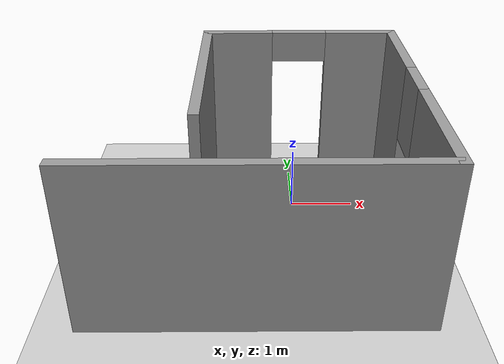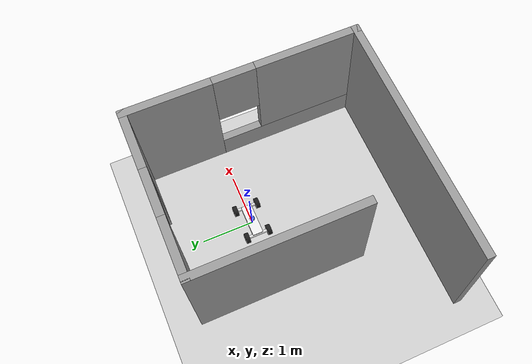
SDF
<sdf version="1.7">
 <world name="default">
  <light name="sun" type="directional">
   <pose>0 0 10 0 -0 0</pose>
   <diffuse>0.8 0.8 0.8 1</diffuse>
   <specular>0.2 0.2 0.2 1</specular>
   <attenuation>
    <range>1000</range>
    <constant>0.9</constant>
    <linear>0.01</linear>
    <quadratic>0.001</quadratic>
   </attenuation>
   <direction>-0.5 0.1 -0.9</direction>
   <spot><inner_angle>0</inner_angle><outer_angle>0</outer_angle><falloff>0</falloff></spot>
  </light>
  <model name="ground_plane">
   <static>1</static>
   <link name="link">
    <collision name="collision">
     <geometry><plane><normal>0 0 1</normal><size>100 100</size></plane></geometry>
     <surface>
      <contact><collide_bitmask>65535</collide_bitmask></contact>
      <friction><ode><mu>100</mu><mu2>50</mu2></ode></friction>
     </surface>
    </collision>
    <visual name="visual">
     <cast_shadows>0</cast_shadows>
     <geometry><plane><normal>0 0 1</normal><size>100 100</size></plane></geometry>
     <material>
      <script><uri>file://media/materials/scripts/gazebo.material</uri><name>Gazebo/Grey</name></script>
     </material>
    </visual>
   </link>
  </model>
  <gravity>0 0 -9.8</gravity>
  <magnetic_field>6e-06 2.3e-05 -4.2e-05</magnetic_field>
  <atmosphere type="adiabatic"/>
  <physics type="ode">
   <max_step_size>0.001</max_step_size>
   <real_time_factor>1</real_time_factor>
   <real_time_update_rate>1000</real_time_update_rate>
  </physics>
  <scene><ambient>0.4 0.4 0.4 1</ambient><background>0.7 0.7 0.7 1</background><shadows>1</shadows></scene>
  <audio><device>default</device></audio>
  <spherical_coordinates>
   <surface_model>EARTH_WGS84</surface_model>
   <latitude_deg>0</latitude_deg>
   <longitude_deg>0</longitude_deg>
   <elevation>0</elevation>
   <heading_deg>0</heading_deg>
  </spherical_coordinates>
  <model name="my_bot">
   <link name="base_link">
    <inertial>
     <pose>-0.001111 0 0.063333 0 -0 0</pose>
     <mass>9</mass>
     <inertia>
      <ixx>0.0628833</ixx>
      <ixy>0</ixy>
      <ixz>0.00106667</ixz>
      <iyy>0.394022</iyy>
      <iyz>-5.99131e-18</iyz>
      <izz>0.419339</izz>
     </inertia>
    </inertial>
    <collision name="base_link_fixed_joint_lump__back_suspension_collision">
     <pose>-0.3 0 0.05 -1.5708 0 0</pose>
     <geometry><cylinder><length>0.36</length><radius>0.03</radius></cylinder></geometry>
    </collision>
    <collision name="base_link_fixed_joint_lump__chassis_collision_1">
     <pose>0 0 0.05 0 -0 0</pose>
     <geometry><box><size>0.62 0.2 0.1</size></box></geometry>
    </collision>
    <collision name="base_link_fixed_joint_lump__laser_frame_collision_2">
     <pose>-0.01 0 0.17 0 -0 0</pose>
     <geometry><cylinder><length>0.08</length><radius>0.1</radius></cylinder></geometry>
    </collision>
    <collision name="base_link_fixed_joint_lump__front_suspension_collision_3">
     <pose>0.3 0 0.05 -1.5708 0 0</pose>
     <geometry><cylinder><length>0.36</length><radius>0.03</radius></cylinder></geometry>
    </collision>
    <visual name="base_link_fixed_joint_lump__back_suspension_visual">
     <pose>-0.3 0 0.05 -1.5708 0 0</pose>
     <geometry><cylinder><length>0.36</length><radius>0.03</radius></cylinder></geometry>
     <material>
      <script><name>Gazebo/White</name><uri>file://media/materials/scripts/gazebo.material</uri></script>
     </material>
    </visual>
    <visual name="base_link_fixed_joint_lump__chassis_visual_1">
     <pose>0 0 0.05 0 -0 0</pose>
     <geometry><box><size>0.62 0.2 0.1</size></box></geometry>
     <material>
      <script><name>Gazebo/White</name><uri>file://media/materials/scripts/gazebo.material</uri></script>
     </material>
    </visual>
    <visual name="base_link_fixed_joint_lump__laser_frame_visual_2">
     <pose>-0.01 0 0.17 0 -0 0</pose>
     <geometry><cylinder><length>0.04</length><radius>0.05</radius></cylinder></geometry>
     <material>
      <script><name>Gazebo/Blue</name><uri>file://media/materials/scripts/gazebo.material</uri></script>
     </material>
    </visual>
    <visual name="base_link_fixed_joint_lump__front_suspension_visual_3">
     <pose>0.3 0 0.05 -1.5708 0 0</pose>
     <geometry><cylinder><length>0.36</length><radius>0.03</radius></cylinder></geometry>
     <material>
      <script><name>Gazebo/White</name><uri>file://media/materials/scripts/gazebo.material</uri></script>
     </material>
    </visual>
    <sensor name="laser" type="ray">
     <visualize>1</visualize>
     <update_rate>10</update_rate>
     <ray>
      <scan>
       <horizontal>
        <samples>360</samples>
        <resolution>1</resolution>
        <min_angle>-3.14</min_angle>
        <max_angle>3.14</max_angle>
       </horizontal>
       <vertical><samples>1</samples><min_angle>0</min_angle><max_angle>0</max_angle></vertical>
      </scan>
      <range><min>0.3</min><max>12</max><resolution>0.1</resolution></range>
     </ray>
     <plugin name="laser_controller" filename="libgazebo_ros_ray_sensor.so">
      <ros><argument>~/out:=scan</argument></ros>
      <output_type>sensor_msgs/LaserScan</output_type>
      <frame_name>laser_frame</frame_name>
     </plugin>
     <pose>-0.01 0 0.17 0 -0 0</pose>
    </sensor>
   </link>
   <joint name="left_back_wheel_joint" type="revolute">
    <pose relative_to="base_link">-0.3 0.22 0.05 -1.5708 0 0</pose>
    <parent>base_link</parent>
    <child>left_back_wheel</child>
    <axis>
     <xyz>0 0 1</xyz>
     <limit><lower>-1e+16</lower><upper>1e+16</upper></limit>
     <dynamics><spring_reference>0</spring_reference><spring_stiffness>0</spring_stiffness></dynamics>
    </axis>
   </joint>
   <link name="left_back_wheel">
    <pose relative_to="left_back_wheel_joint">0 0 0 0 -0 0</pose>
    <inertial>
     <mass>1</mass>
     <inertia>
      <ixx>0.00303333</ixx>
      <ixy>0</ixy>
      <ixz>0</ixz>
      <iyy>0.00303333</iyy>
      <iyz>0</iyz>
      <izz>0.005</izz>
     </inertia>
    </inertial>
    <collision name="left_back_wheel_collision">
     <geometry><cylinder><length>0.08</length><radius>0.1</radius></cylinder></geometry>
    </collision>
    <visual name="left_back_wheel_visual">
     <geometry><cylinder><length>0.08</length><radius>0.1</radius></cylinder></geometry>
     <material>
      <script><name>Gazebo/Black</name><uri>file://media/materials/scripts/gazebo.material</uri></script>
     </material>
    </visual>
    <mul1>{mul1}</mul1>
    <mul2>{mul2}</mul2>
   </link>
   <joint name="left_front_wheel_joint" type="revolute">
    <pose relative_to="base_link">0.3 0.22 0.05 -1.5708 0 0</pose>
    <parent>base_link</parent>
    <child>left_front_wheel</child>
    <axis>
     <xyz>0 0 1</xyz>
     <limit><lower>-1e+16</lower><upper>1e+16</upper></limit>
     <dynamics><spring_reference>0</spring_reference><spring_stiffness>0</spring_stiffness></dynamics>
    </axis>
   </joint>
   <link name="left_front_wheel">
    <pose relative_to="left_front_wheel_joint">0 0 0 0 -0 0</pose>
    <inertial>
     <mass>1</mass>
     <inertia>
      <ixx>0.00303333</ixx>
      <ixy>0</ixy>
      <ixz>0</ixz>
      <iyy>0.00303333</iyy>
      <iyz>0</iyz>
      <izz>0.005</izz>
     </inertia>
    </inertial>
    <collision name="left_front_wheel_collision">
     <geometry><cylinder><length>0.08</length><radius>0.1</radius></cylinder></geometry>
    </collision>
    <visual name="left_front_wheel_visual">
     <geometry><cylinder><length>0.08</length><radius>0.1</radius></cylinder></geometry>
     <material>
      <script><name>Gazebo/Black</name><uri>file://media/materials/scripts/gazebo.material</uri></script>
     </material>
    </visual>
    <mul1>{mul1}</mul1>
    <mul2>{mul2}</mul2>
   </link>
   <joint name="right_back_wheel_joint" type="revolute">
    <pose relative_to="base_link">-0.3 -0.22 0.05 1.5708 -0 0</pose>
    <parent>base_link</parent>
    <child>right_back_wheel</child>
    <axis>
     <xyz>0 0 -1</xyz>
     <limit><lower>-1e+16</lower><upper>1e+16</upper></limit>
     <dynamics><spring_reference>0</spring_reference><spring_stiffness>0</spring_stiffness></dynamics>
    </axis>
   </joint>
   <link name="right_back_wheel">
    <pose relative_to="right_back_wheel_joint">0 0 0 0 -0 0</pose>
    <inertial>
     <mass>1</mass>
     <inertia>
      <ixx>0.00303333</ixx>
      <ixy>0</ixy>
      <ixz>0</ixz>
      <iyy>0.00303333</iyy>
      <iyz>0</iyz>
      <izz>0.005</izz>
     </inertia>
    </inertial>
    <collision name="right_back_wheel_collision">
     <geometry><cylinder><length>0.08</length><radius>0.1</radius></cylinder></geometry>
    </collision>
    <visual name="right_back_wheel_visual">
     <geometry><cylinder><length>0.08</length><radius>0.1</radius></cylinder></geometry>
     <material>
      <script><name>Gazebo/Black</name><uri>file://media/materials/scripts/gazebo.material</uri></script>
     </material>
    </visual>
    <mul1>{mul1}</mul1>
    <mul2>{mul2}</mul2>
   </link>
   <joint name="right_front_wheel_joint" type="revolute">
    <pose relative_to="base_link">0.3 -0.22 0.05 1.5708 -0 0</pose>
    <parent>base_link</parent>
    <child>right_front_wheel</child>
    <axis>
     <xyz>0 0 -1</xyz>
     <limit><lower>-1e+16</lower><upper>1e+16</upper></limit>
     <dynamics><spring_reference>0</spring_reference><spring_stiffness>0</spring_stiffness></dynamics>
    </axis>
   </joint>
   <link name="right_front_wheel">
    <pose relative_to="right_front_wheel_joint">0 0 0 0 -0 0</pose>
    <inertial>
     <mass>1</mass>
     <inertia>
      <ixx>0.00303333</ixx>
      <ixy>0</ixy>
      <ixz>0</ixz>
      <iyy>0.00303333</iyy>
      <iyz>0</iyz>
      <izz>0.005</izz>
     </inertia>
    </inertial>
    <collision name="right_front_wheel_collision">
     <geometry><cylinder><length>0.08</length><radius>0.1</radius></cylinder></geometry>
    </collision>
    <visual name="right_front_wheel_visual">
     <geometry><cylinder><length>0.08</length><radius>0.1</radius></cylinder></geometry>
     <material>
      <script><name>Gazebo/Black</name><uri>file://media/materials/scripts/gazebo.material</uri></script>
     </material>
    </visual>
    <mul1>{mul1}</mul1>
    <mul2>{mul2}</mul2>
   </link>
   <static>0</static>
   <plugin name="diff_drive" filename="libgazebo_ros_diff_drive.so">
    <num_wheel_pairs>2</num_wheel_pairs>
    <left_joint>left_front_wheel_joint</left_joint>
    <right_joint>right_front_wheel_joint</right_joint>
    <left_joint>left_back_wheel_joint</left_joint>
    <right_joint>right_back_wheel_joint</right_joint>
    <wheel_separation>0.36</wheel_separation>
    <wheel_diameter>0.2</wheel_diameter>
    <max_wheel_torque>500</max_wheel_torque>
    <max_wheel_acceleration>10.0</max_wheel_acceleration>
    <odometry_frame>odom</odometry_frame>
    <robot_base_frame>base_link</robot_base_frame>
    <publish_odom>1</publish_odom>
    <publish_odom_tf>1</publish_odom_tf>
    <publish_wheel_tf>1</publish_wheel_tf>
   </plugin>
   <pose>-0.002101 -0.000161 0.05 0 0 -0.000639</pose>
  </model>
  <model name="world1">
   <pose>-0.6 -0.665 0 0 -0 0</pose>
   <link name="Wall_0">
    <collision name="Wall_0_Collision">
     <geometry><box><size>3.25 0.15 2.5</size></box></geometry>
     <pose>0 0 1.25 0 -0 0</pose>
    </collision>
    <visual name="Wall_0_Visual">
     <pose>0 0 1.25 0 -0 0</pose>
     <geometry><box><size>3.25 0.15 2.5</size></box></geometry>
     <material>
      <script><uri>file://media/materials/scripts/gazebo.material</uri><name>Gazebo/Grey</name></script>
      <ambient>1 1 1 1</ambient>
     </material>
     <meta><layer>0</layer></meta>
    </visual>
    <pose>-0.8 0.625 0 0 -0 1.5708</pose>
   </link>
   <link name="Wall_2">
    <pose>0.75 2.175 0 0 -0 0</pose>
    <visual name="Wall_2_Visual_0">
     <pose>-1.0425 0 1.25 0 -0 0</pose>
     <geometry><box><size>1.165 0.15 2.5</size></box></geometry>
     <material>
      <script><uri>file://media/materials/scripts/gazebo.material</uri><name>Gazebo/Grey</name></script>
      <ambient>1 1 1 1</ambient>
     </material>
     <meta><layer>0</layer></meta>
    </visual>
    <collision name="Wall_2_Collision_0">
     <geometry><box><size>1.165 0.15 2.5</size></box></geometry>
     <pose>-1.0425 0 1.25 0 -0 0</pose>
    </collision>
    <visual name="Wall_2_Visual_1">
     <pose>1.0325 0 1.25 0 -0 0</pose>
     <geometry><box><size>1.185 0.15 2.5</size></box></geometry>
     <material>
      <script><uri>file://media/materials/scripts/gazebo.material</uri><name>Gazebo/Grey</name></script>
      <ambient>1 1 1 1</ambient>
     </material>
     <meta><layer>0</layer></meta>
    </visual>
    <collision name="Wall_2_Collision_1">
     <geometry><box><size>1.185 0.15 2.5</size></box></geometry>
     <pose>1.0325 0 1.25 0 -0 0</pose>
    </collision>
    <visual name="Wall_2_Visual_2">
     <pose>-0.01 0 2.25 0 -0 0</pose>
     <geometry><box><size>0.9 0.15 0.5</size></box></geometry>
     <material>
      <script><uri>file://media/materials/scripts/gazebo.material</uri><name>Gazebo/Grey</name></script>
      <ambient>1 1 1 1</ambient>
     </material>
     <meta><layer>0</layer></meta>
    </visual>
    <collision name="Wall_2_Collision_2">
     <geometry><box><size>0.9 0.15 0.5</size></box></geometry>
     <pose>-0.01 0 2.25 0 -0 0</pose>
    </collision>
   </link>
   <link name="Wall_3">
    <pose>2.3 -0 0 0 -0 -1.5708</pose>
    <visual name="Wall_3_Visual_0">
     <pose>-1.4125 0 1.25 0 -0 0</pose>
     <geometry><box><size>1.675 0.15 2.5</size></box></geometry>
     <material>
      <script><uri>file://media/materials/scripts/gazebo.material</uri><name>Gazebo/Grey</name></script>
      <ambient>1 1 1 1</ambient>
     </material>
     <meta><layer>0</layer></meta>
    </visual>
    <collision name="Wall_3_Collision_0">
     <geometry><box><size>1.675 0.15 2.5</size></box></geometry>
     <pose>-1.4125 0 1.25 0 -0 0</pose>
    </collision>
    <visual name="Wall_3_Visual_1">
     <pose>0.8375 0 0.25 0 -0 0</pose>
     <geometry><box><size>2.825 0.15 0.5</size></box></geometry>
     <material>
      <script><uri>file://media/materials/scripts/gazebo.material</uri><name>Gazebo/Grey</name></script>
      <ambient>1 1 1 1</ambient>
     </material>
     <meta><layer>0</layer></meta>
    </visual>
    <collision name="Wall_3_Collision_1">
     <geometry><box><size>2.825 0.15 0.5</size></box></geometry>
     <pose>0.8375 0 0.25 0 -0 0</pose>
    </collision>
    <visual name="Wall_3_Visual_2">
     <pose>1.2375 0 1.5 0 -0 0</pose>
     <geometry><box><size>2.025 0.15 2</size></box></geometry>
     <material>
      <script><uri>file://media/materials/scripts/gazebo.material</uri><name>Gazebo/Grey</name></script>
      <ambient>1 1 1 1</ambient>
     </material>
     <meta><layer>0</layer></meta>
    </visual>
    <collision name="Wall_3_Collision_2">
     <geometry><box><size>2.025 0.15 2</size></box></geometry>
     <pose>1.2375 0 1.5 0 -0 0</pose>
    </collision>
    <visual name="Wall_3_Visual_3">
     <pose>-0.175 0 1.9 0 -0 0</pose>
     <geometry><box><size>0.8 0.15 1.2</size></box></geometry>
     <material>
      <script><uri>file://media/materials/scripts/gazebo.material</uri><name>Gazebo/Grey</name></script>
      <ambient>1 1 1 1</ambient>
     </material>
     <meta><layer>0</layer></meta>
    </visual>
    <collision name="Wall_3_Collision_3">
     <geometry><box><size>0.8 0.15 1.2</size></box></geometry>
     <pose>-0.175 0 1.9 0 -0 0</pose>
    </collision>
   </link>
   <link name="Wall_4">
    <collision name="Wall_4_Collision">
     <geometry><box><size>4.75 0.15 2.5</size></box></geometry>
     <pose>0 0 1.25 0 -0 0</pose>
    </collision>
    <visual name="Wall_4_Visual">
     <pose>0 0 1.25 0 -0 0</pose>
     <geometry><box><size>4.75 0.15 2.5</size></box></geometry>
     <material>
      <script><uri>file://media/materials/scripts/gazebo.material</uri><name>Gazebo/Grey</name></script>
      <ambient>1 1 1 1</ambient>
     </material>
     <meta><layer>0</layer></meta>
    </visual>
    <pose>-0 -2.175 0 0 -0 3.14159</pose>
   </link>
   <static>1</static>
  </model>
 </world>
</sdf>
